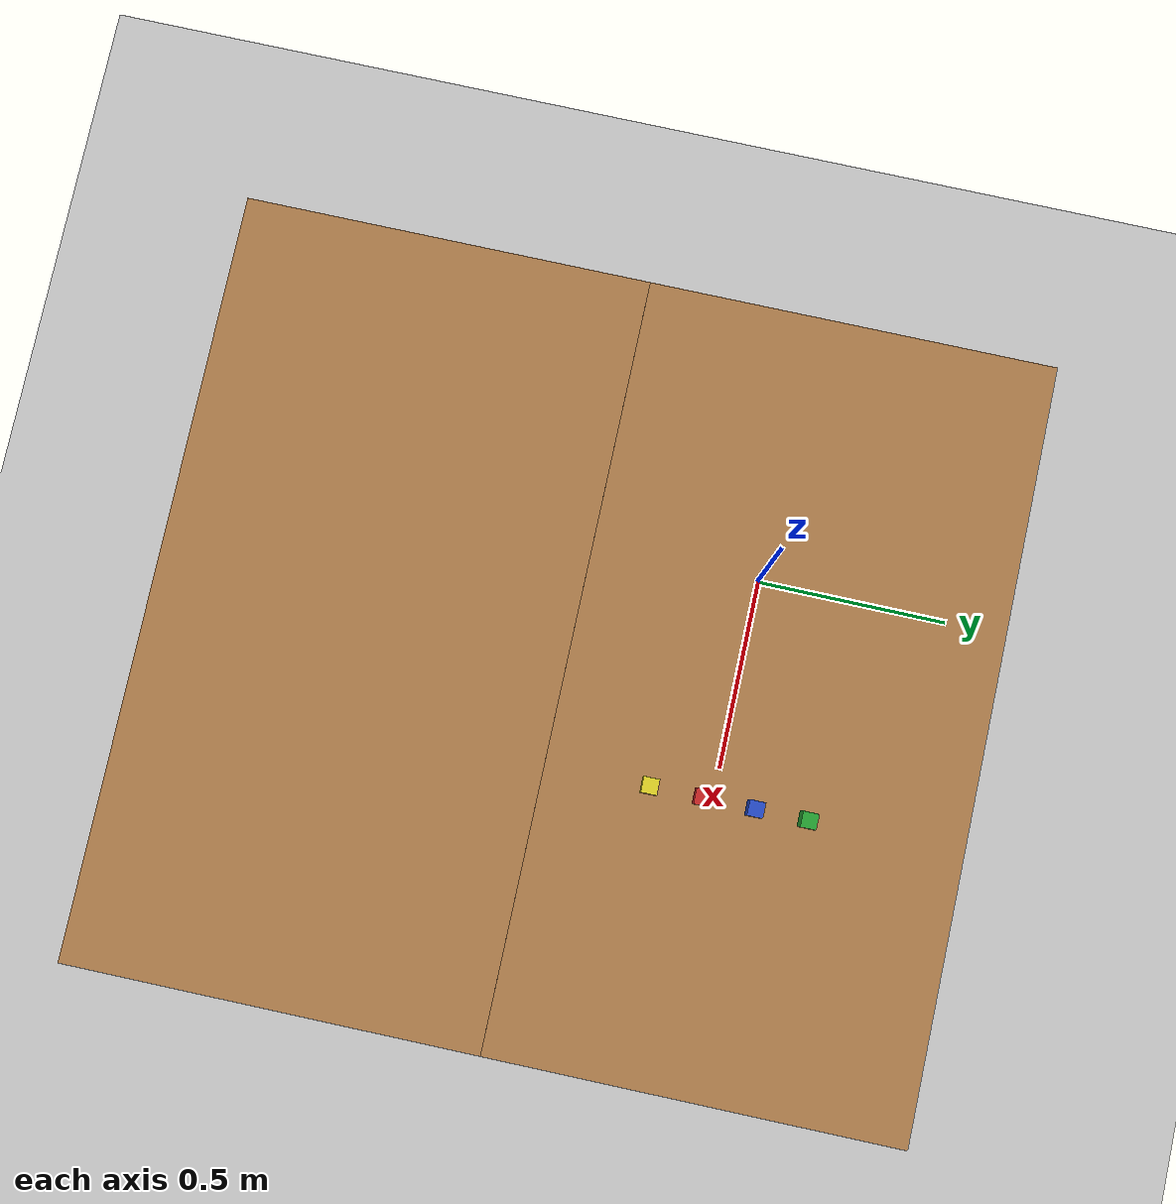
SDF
<sdf version="1.6">
 <world name="default">
  <light name="sun" type="directional">
   <pose>0 0 10 0 -0 0</pose>
   <diffuse>0.8 0.8 0.8 1</diffuse>
   <specular>0.2 0.2 0.2 1</specular>
   <attenuation>
    <range>1000</range>
    <constant>0.9</constant>
    <linear>0.01</linear>
    <quadratic>0.001</quadratic>
   </attenuation>
   <direction>-0.5 0.1 -0.9</direction>
  </light>
  <model name="ground_plane">
   <static>1</static>
   <link name="link">
    <collision name="collision">
     <geometry><plane><normal>0 0 1</normal><size>100 100</size></plane></geometry>
     <surface><friction><ode><mu>100</mu><mu2>50</mu2></ode></friction></surface>
    </collision>
    <visual name="visual">
     <cast_shadows>0</cast_shadows>
     <geometry><plane><normal>0 0 1</normal><size>100 100</size></plane></geometry>
     <material>
      <script><uri>file://media/materials/scripts/gazebo.material</uri><name>Gazebo/Grey</name></script>
     </material>
    </visual>
   </link>
  </model>
  <gravity>0 0 -9.8</gravity>
  <magnetic_field>6e-06 2.3e-05 -4.2e-05</magnetic_field>
  <atmosphere type="adiabatic"/>
  <physics name="default_physics" default="0" type="ode">
   <max_step_size>0.001</max_step_size>
   <real_time_factor>1</real_time_factor>
   <real_time_update_rate>1000</real_time_update_rate>
  </physics>
  <scene><ambient>0.4 0.4 0.4 1</ambient><background>0.7 0.7 0.7 1</background><shadows>1</shadows></scene>
  <spherical_coordinates>
   <surface_model>EARTH_WGS84</surface_model>
   <latitude_deg>0</latitude_deg>
   <longitude_deg>0</longitude_deg>
   <elevation>0</elevation>
   <heading_deg>0</heading_deg>
  </spherical_coordinates>
  <model name="table">
   <static>1</static>
   <link name="link">
    <collision name="surface">
     <pose>0 0 1 0 -0 0</pose>
     <geometry><box><size>1.5 0.8 0.03</size></box></geometry>
     <surface><friction><ode><mu>0.6</mu><mu2>0.6</mu2></ode></friction></surface>
    </collision>
    <visual name="visual1">
     <pose>0 0 1 0 -0 0</pose>
     <geometry><box><size>1.5 0.8 0.03</size></box></geometry>
     <material>
      <script><uri>file://media/materials/scripts/gazebo.material</uri><name>Gazebo/Wood</name></script>
     </material>
    </visual>
    <collision name="front_left_leg">
     <pose>0.68 0.38 0.5 0 -0 0</pose>
     <geometry><cylinder><radius>0.02</radius><length>1</length></cylinder></geometry>
    </collision>
    <visual name="front_left_leg">
     <pose>0.68 0.38 0.5 0 -0 0</pose>
     <geometry><cylinder><radius>0.02</radius><length>1</length></cylinder></geometry>
     <material>
      <script><uri>file://media/materials/scripts/gazebo.material</uri><name>Gazebo/Grey</name></script>
     </material>
    </visual>
    <collision name="front_right_leg">
     <pose>0.68 -0.38 0.5 0 -0 0</pose>
     <geometry><cylinder><radius>0.02</radius><length>1</length></cylinder></geometry>
    </collision>
    <visual name="front_right_leg">
     <pose>0.68 -0.38 0.5 0 -0 0</pose>
     <geometry><cylinder><radius>0.02</radius><length>1</length></cylinder></geometry>
     <material>
      <script><uri>file://media/materials/scripts/gazebo.material</uri><name>Gazebo/Grey</name></script>
     </material>
    </visual>
    <collision name="back_right_leg">
     <pose>-0.68 -0.38 0.5 0 -0 0</pose>
     <geometry><cylinder><radius>0.02</radius><length>1</length></cylinder></geometry>
    </collision>
    <visual name="back_right_leg">
     <pose>-0.68 -0.38 0.5 0 -0 0</pose>
     <geometry><cylinder><radius>0.02</radius><length>1</length></cylinder></geometry>
     <material>
      <script><uri>file://media/materials/scripts/gazebo.material</uri><name>Gazebo/Grey</name></script>
     </material>
    </visual>
    <collision name="back_left_leg">
     <pose>-0.68 0.38 0.5 0 -0 0</pose>
     <geometry><cylinder><radius>0.02</radius><length>1</length></cylinder></geometry>
    </collision>
    <visual name="back_left_leg">
     <pose>-0.68 0.38 0.5 0 -0 0</pose>
     <geometry><cylinder><radius>0.02</radius><length>1</length></cylinder></geometry>
     <material>
      <script><uri>file://media/materials/scripts/gazebo.material</uri><name>Gazebo/Grey</name></script>
     </material>
    </visual>
   </link>
   <pose>0.4 0 0 0 -0 0</pose>
  </model>
  <model name="table_0">
   <static>1</static>
   <link name="link">
    <collision name="surface">
     <pose>0 0 1 0 -0 0</pose>
     <geometry><box><size>1.5 0.8 0.03</size></box></geometry>
     <surface><friction><ode><mu>0.6</mu><mu2>0.6</mu2></ode></friction></surface>
    </collision>
    <visual name="visual1">
     <pose>0 0 1 0 -0 0</pose>
     <geometry><box><size>1.5 0.8 0.03</size></box></geometry>
     <material>
      <script><uri>file://media/materials/scripts/gazebo.material</uri><name>Gazebo/Wood</name></script>
     </material>
    </visual>
    <collision name="front_left_leg">
     <pose>0.68 0.38 0.5 0 -0 0</pose>
     <geometry><cylinder><radius>0.02</radius><length>1</length></cylinder></geometry>
    </collision>
    <visual name="front_left_leg">
     <pose>0.68 0.38 0.5 0 -0 0</pose>
     <geometry><cylinder><radius>0.02</radius><length>1</length></cylinder></geometry>
     <material>
      <script><uri>file://media/materials/scripts/gazebo.material</uri><name>Gazebo/Grey</name></script>
     </material>
    </visual>
    <collision name="front_right_leg">
     <pose>0.68 -0.38 0.5 0 -0 0</pose>
     <geometry><cylinder><radius>0.02</radius><length>1</length></cylinder></geometry>
    </collision>
    <visual name="front_right_leg">
     <pose>0.68 -0.38 0.5 0 -0 0</pose>
     <geometry><cylinder><radius>0.02</radius><length>1</length></cylinder></geometry>
     <material>
      <script><uri>file://media/materials/scripts/gazebo.material</uri><name>Gazebo/Grey</name></script>
     </material>
    </visual>
    <collision name="back_right_leg">
     <pose>-0.68 -0.38 0.5 0 -0 0</pose>
     <geometry><cylinder><radius>0.02</radius><length>1</length></cylinder></geometry>
    </collision>
    <visual name="back_right_leg">
     <pose>-0.68 -0.38 0.5 0 -0 0</pose>
     <geometry><cylinder><radius>0.02</radius><length>1</length></cylinder></geometry>
     <material>
      <script><uri>file://media/materials/scripts/gazebo.material</uri><name>Gazebo/Grey</name></script>
     </material>
    </visual>
    <collision name="back_left_leg">
     <pose>-0.68 0.38 0.5 0 -0 0</pose>
     <geometry><cylinder><radius>0.02</radius><length>1</length></cylinder></geometry>
    </collision>
    <visual name="back_left_leg">
     <pose>-0.68 0.38 0.5 0 -0 0</pose>
     <geometry><cylinder><radius>0.02</radius><length>1</length></cylinder></geometry>
     <material>
      <script><uri>file://media/materials/scripts/gazebo.material</uri><name>Gazebo/Grey</name></script>
     </material>
    </visual>
   </link>
   <pose>0.4 -0.80005 0 0 -0 0</pose>
  </model>
  <model name="box_blue">
   <link name="unit_box::link">
    <inertial>
     <mass>0.01</mass>
     <inertia>
      <ixx>0.166667</ixx>
      <ixy>0</ixy>
      <ixz>0</ixz>
      <iyy>0.166667</iyy>
      <iyz>0</iyz>
      <izz>0.166667</izz>
     </inertia>
    </inertial>
    <visual name="visual">
     <geometry><box><size>0.03 0.03 0.07</size></box></geometry>
     <material>
      <script><name>Gazebo/Blue</name><uri>file://media/materials/scripts/gazebo.material</uri></script>
     </material>
    </visual>
    <collision name="collision">
     <geometry><box><size>0.03 0.03 0.07</size></box></geometry>
     <surface>
      <friction>
       <ode><mu>100</mu><mu2>100</mu2><fdir1>1 1 1</fdir1><slip1>0</slip1><slip2>0</slip2></ode>
       <torsional>
        <coefficient>1</coefficient>
        <patch_radius>0</patch_radius>
        <surface_radius>0</surface_radius>
        <use_patch_radius>1</use_patch_radius>
        <ode><slip>0</slip></ode>
       </torsional>
      </friction>
      <bounce><restitution_coefficient>0</restitution_coefficient><threshold>1e+06</threshold></bounce>
      <contact>
       <collide_without_contact>0</collide_without_contact>
       <collide_without_contact_bitmask>1</collide_without_contact_bitmask>
       <collide_bitmask>1</collide_bitmask>
       <ode>
        <soft_cfm>0</soft_cfm>
        <soft_erp>0.2</soft_erp>
        <kp>1e+13</kp>
        <kd>1</kd>
        <max_vel>0.01</max_vel>
        <min_depth>0</min_depth>
       </ode>
       <bullet>
        <split_impulse>1</split_impulse>
        <split_impulse_penetration_threshold>-0.01</split_impulse_penetration_threshold>
        <soft_cfm>0</soft_cfm>
        <soft_erp>0.2</soft_erp>
        <kp>1e+13</kp>
        <kd>1</kd>
       </bullet>
      </contact>
     </surface>
    </collision>
   </link>
   <static>0</static>
   <pose>0.6 0 1.024 0 -0 0</pose>
  </model>
  <model name="box_green">
   <link name="unit_box::link">
    <inertial>
     <mass>0.01</mass>
     <inertia>
      <ixx>0.166667</ixx>
      <ixy>0</ixy>
      <ixz>0</ixz>
      <iyy>0.166667</iyy>
      <iyz>0</iyz>
      <izz>0.166667</izz>
     </inertia>
    </inertial>
    <visual name="visual">
     <geometry><box><size>0.03 0.03 0.07</size></box></geometry>
     <material>
      <script><name>Gazebo/Green</name><uri>file://media/materials/scripts/gazebo.material</uri></script>
     </material>
    </visual>
    <collision name="collision">
     <geometry><box><size>0.03 0.03 0.07</size></box></geometry>
     <surface>
      <friction>
       <ode><mu>100</mu><mu2>100</mu2><fdir1>1 1 1</fdir1><slip1>0</slip1><slip2>0</slip2></ode>
       <torsional>
        <coefficient>1</coefficient>
        <patch_radius>0</patch_radius>
        <surface_radius>0</surface_radius>
        <use_patch_radius>1</use_patch_radius>
        <ode><slip>0</slip></ode>
       </torsional>
      </friction>
      <bounce><restitution_coefficient>0</restitution_coefficient><threshold>1e+06</threshold></bounce>
      <contact>
       <collide_without_contact>0</collide_without_contact>
       <collide_without_contact_bitmask>1</collide_without_contact_bitmask>
       <collide_bitmask>1</collide_bitmask>
       <ode>
        <soft_cfm>0</soft_cfm>
        <soft_erp>0.2</soft_erp>
        <kp>1e+13</kp>
        <kd>1</kd>
        <max_vel>0.01</max_vel>
        <min_depth>0</min_depth>
       </ode>
       <bullet>
        <split_impulse>1</split_impulse>
        <split_impulse_penetration_threshold>-0.01</split_impulse_penetration_threshold>
        <soft_cfm>0</soft_cfm>
        <soft_erp>0.2</soft_erp>
        <kp>1e+13</kp>
        <kd>1</kd>
       </bullet>
      </contact>
     </surface>
    </collision>
   </link>
   <static>0</static>
   <pose>0.6 0.1 1.024 0 -0 0</pose>
  </model>
  <model name="box_red">
   <link name="unit_box::link">
    <inertial>
     <mass>0.01</mass>
     <inertia>
      <ixx>0.166667</ixx>
      <ixy>0</ixy>
      <ixz>0</ixz>
      <iyy>0.166667</iyy>
      <iyz>0</iyz>
      <izz>0.166667</izz>
     </inertia>
    </inertial>
    <visual name="visual">
     <geometry><box><size>0.03 0.03 0.07</size></box></geometry>
     <material>
      <script><name>Gazebo/Red</name><uri>file://media/materials/scripts/gazebo.material</uri></script>
     </material>
    </visual>
    <collision name="collision">
     <geometry><box><size>0.03 0.03 0.07</size></box></geometry>
     <surface>
      <friction>
       <ode><mu>100</mu><mu2>100</mu2><fdir1>1 1 1</fdir1><slip1>0</slip1><slip2>0</slip2></ode>
       <torsional>
        <coefficient>1</coefficient>
        <patch_radius>0</patch_radius>
        <surface_radius>0</surface_radius>
        <use_patch_radius>1</use_patch_radius>
        <ode><slip>0</slip></ode>
       </torsional>
      </friction>
      <bounce><restitution_coefficient>0</restitution_coefficient><threshold>1e+06</threshold></bounce>
      <contact>
       <collide_without_contact>0</collide_without_contact>
       <collide_without_contact_bitmask>1</collide_without_contact_bitmask>
       <collide_bitmask>1</collide_bitmask>
       <ode>
        <soft_cfm>0</soft_cfm>
        <soft_erp>0.2</soft_erp>
        <kp>1e+13</kp>
        <kd>1</kd>
        <max_vel>0.01</max_vel>
        <min_depth>0</min_depth>
       </ode>
       <bullet>
        <split_impulse>1</split_impulse>
        <split_impulse_penetration_threshold>-0.01</split_impulse_penetration_threshold>
        <soft_cfm>0</soft_cfm>
        <soft_erp>0.2</soft_erp>
        <kp>1e+13</kp>
        <kd>1</kd>
       </bullet>
      </contact>
     </surface>
    </collision>
   </link>
   <static>0</static>
   <pose>0.6 -0.1 1.024 0 -0 0</pose>
  </model>
  <model name="yellow_box">
   <link name="link">
    <pose>0 0 0.025 0 -0 0</pose>
    <inertial>
     <mass>0.05</mass>
     <inertia>
      <ixx>2.35417e-05</ixx>
      <ixy>0</ixy>
      <ixz>0</ixz>
      <iyy>2.35417e-05</iyy>
      <iyz>0</iyz>
      <izz>2.35417e-05</izz>
     </inertia>
    </inertial>
    <collision name="collision">
     <geometry><box><size>0.03 0.03 0.07</size></box></geometry>
     <surface>
      <contact>
       <poissons_ratio>0.347</poissons_ratio>
       <elastic_modulus>8.8e+09</elastic_modulus>
       <ode><kp>100000</kp><kd>1</kd><max_vel>1</max_vel><min_depth>0.001</min_depth></ode>
      </contact>
      <friction>
       <torsional>
        <coefficient>1</coefficient>
        <use_patch_radius>0</use_patch_radius>
        <surface_radius>0.05</surface_radius>
       </torsional>
      </friction>
     </surface>
    </collision>
    <visual name="visual">
     <geometry><box><size>0.03 0.03 0.07</size></box></geometry>
     <material>
      <script><uri>file://media/materials/scripts/gazebo.material</uri><name>Gazebo/Yellow</name></script>
     </material>
    </visual>
   </link>
   <pose>0.6 -0.2 1.024 0 -0 0</pose>
  </model>
 </world>
</sdf>
